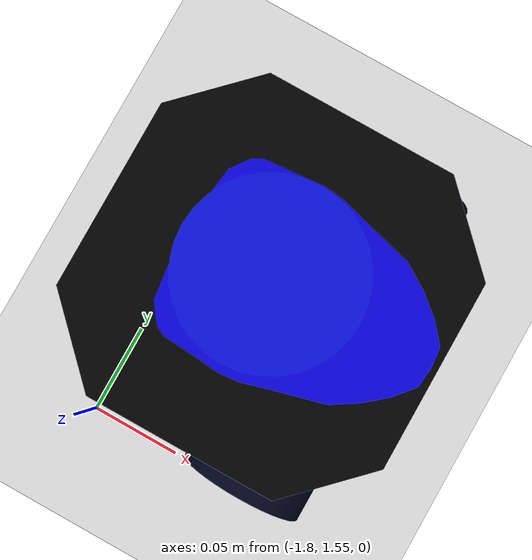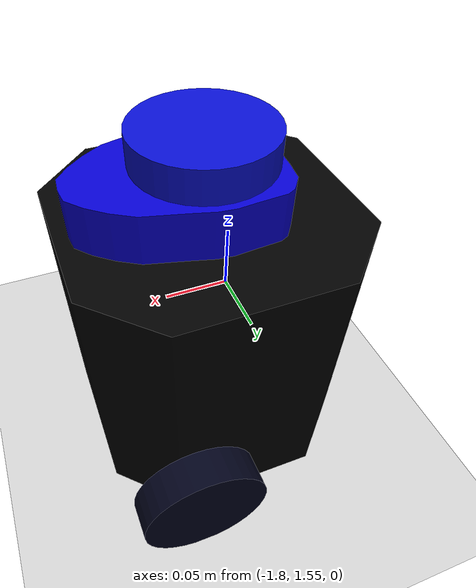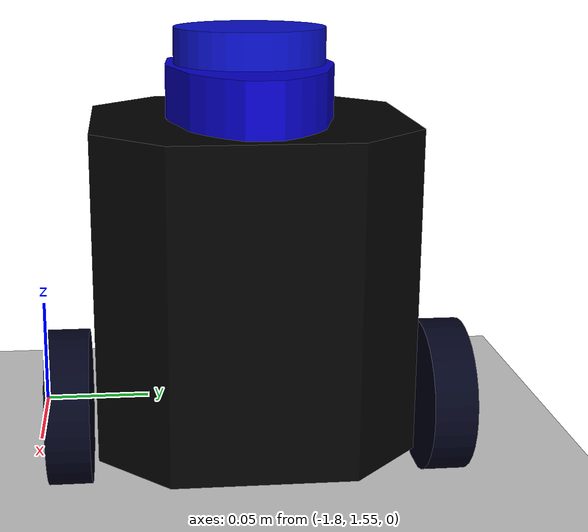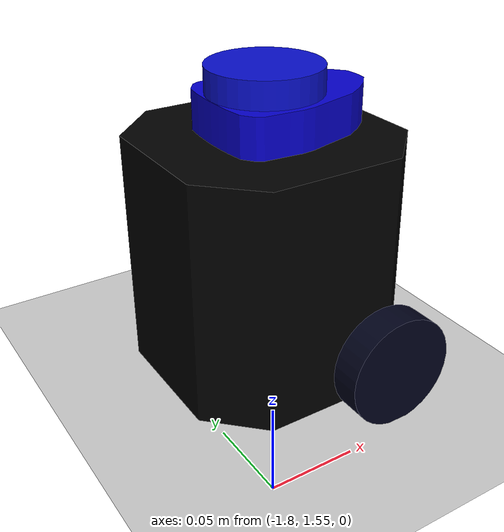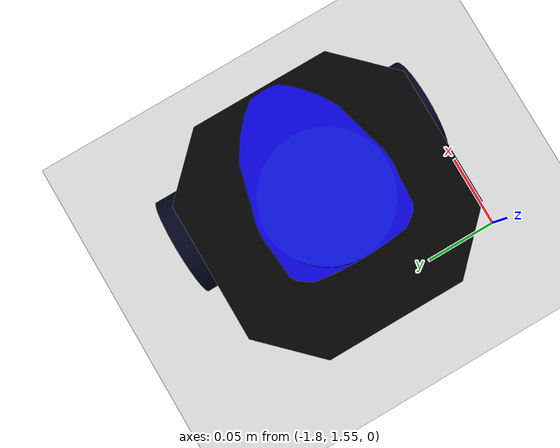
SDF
<sdf version="1.7">
 <world name="default">
  <model name="ground_plane">
   <static>1</static>
   <link name="link">
    <collision name="collision">
     <geometry><plane><normal>0 0 1</normal><size>100 100</size></plane></geometry>
     <surface><friction><ode><mu>100</mu><mu2>50</mu2></ode></friction></surface>
    </collision>
    <visual name="visual">
     <cast_shadows>0</cast_shadows>
     <geometry><plane><normal>0 0 1</normal><size>100 100</size></plane></geometry>
     <material>
      <script><uri>file://media/materials/scripts/gazebo.material</uri><name>Gazebo/Grey</name></script>
     </material>
    </visual>
   </link>
  </model>
  <model name="tb2">
   <pose>-1.71083 1.64596 0.00888 2e-05 0.001442 1.4e-05</pose>
   <link name="base_footprint">
    <inertial>
     <inertia><ixx>1</ixx><ixy>0</ixy><ixz>0</ixz><iyy>1</iyy><iyz>0</iyz><izz>1</izz></inertia>
     <mass>1</mass>
    </inertial>
   </link>
   <link name="base_link">
    <inertial>
     <pose>-0.032 0 0.07 0 -0 0</pose>
     <inertia>
      <ixx>0.723974</ixx>
      <ixy>4.6864e-10</ixy>
      <ixz>-1.09526e-08</ixz>
      <iyy>0.723974</iyy>
      <iyz>2.85826e-09</iyz>
      <izz>0.65305</izz>
     </inertia>
     <mass>0.825735</mass>
    </inertial>
    <collision name="base_collision">
     <pose>-0.032 0 0.07 0 -0 0</pose>
     <geometry><box><size>0.14 0.14 0.14</size></box></geometry>
    </collision>
    <visual name="base_visual">
     <pose>-0.032 0 0 0 -0 0</pose>
     <geometry>
      <mesh><uri>model://turtlebot3_burger/meshes/burger_base.dae</uri><scale>0.001 0.001 0.001</scale></mesh>
     </geometry>
    </visual>
   </link>
   <link name="imu_link">
    <sensor name="tb3_imu" type="imu">
     <always_on>1</always_on>
     <update_rate>30</update_rate>
     <imu>
      <angular_velocity>
       <x><noise type="gaussian"><mean>0</mean><stddev>0.0002</stddev></noise></x>
       <y><noise type="gaussian"><mean>0</mean><stddev>0.0002</stddev></noise></y>
       <z><noise type="gaussian"><mean>0</mean><stddev>0.0002</stddev></noise></z>
      </angular_velocity>
      <linear_acceleration>
       <x><noise type="gaussian"><mean>0</mean><stddev>0.017</stddev></noise></x>
       <y><noise type="gaussian"><mean>0</mean><stddev>0.017</stddev></noise></y>
       <z><noise type="gaussian"><mean>0</mean><stddev>0.017</stddev></noise></z>
      </linear_acceleration>
     </imu>
     <plugin name="turtlebot3_imu" filename="libgazebo_ros_imu_sensor.so">
      <ros><remapping>~/out:=imu</remapping><namespace>/tb2</namespace></ros>
     </plugin>
    </sensor>
    <inertial>
     <inertia><ixx>1</ixx><ixy>0</ixy><ixz>0</ixz><iyy>1</iyy><iyz>0</iyz><izz>1</izz></inertia>
     <mass>1</mass>
    </inertial>
   </link>
   <link name="base_scan">
    <inertial>
     <pose>-0.02 0 0.161 0 -0 0</pose>
     <inertia><ixx>0.001</ixx><ixy>0</ixy><ixz>0</ixz><iyy>0.001</iyy><iyz>0</iyz><izz>0.001</izz></inertia>
     <mass>0.114</mass>
    </inertial>
    <collision name="lidar_sensor_collision">
     <pose>-0.02 0 0.161 0 -0 0</pose>
     <geometry><cylinder><radius>0.0508</radius><length>0.055</length></cylinder></geometry>
    </collision>
    <visual name="lidar_sensor_visual">
     <pose>-0.032 0 0.171 0 -0 0</pose>
     <geometry>
      <mesh><uri>model://turtlebot3_burger/meshes/lds.dae</uri><scale>0.001 0.001 0.001</scale></mesh>
     </geometry>
    </visual>
    <sensor name="hls_lfcd_lds" type="ray">
     <always_on>1</always_on>
     <visualize>1</visualize>
     <pose>-0.032 0 0.171 0 -0 0</pose>
     <update_rate>5</update_rate>
     <ray>
      <scan>
       <horizontal>
        <samples>360</samples>
        <resolution>1</resolution>
        <min_angle>0</min_angle>
        <max_angle>6.28</max_angle>
       </horizontal>
       <vertical><samples>1</samples><min_angle>0</min_angle><max_angle>0</max_angle></vertical>
      </scan>
      <range><min>0.12</min><max>1</max><resolution>0.015</resolution></range>
      <noise><type>gaussian</type><mean>0</mean><stddev>0.01</stddev></noise>
     </ray>
     <plugin name="turtlebot3_laserscan" filename="libgazebo_ros_ray_sensor.so">
      <ros><remapping>~/out:=scan</remapping><visualize>1</visualize><namespace>/tb2</namespace></ros>
      <output_type>sensor_msgs/LaserScan</output_type>
      <frame_name>base_scan</frame_name>
     </plugin>
    </sensor>
   </link>
   <link name="wheel_left_link">
    <inertial>
     <pose>0 0.08 0.023 -1.57 0 0</pose>
     <inertia>
      <ixx>0.00181582</ixx>
      <ixy>-9.3392e-12</ixy>
      <ixz>1.04909e-11</ixz>
      <iyy>0.00329221</iyy>
      <iyz>5.75694e-11</iyz>
      <izz>0.00181582</izz>
     </inertia>
     <mass>0.0284989</mass>
    </inertial>
    <collision name="wheel_left_collision">
     <pose>0 0.08 0.023 -1.57 0 0</pose>
     <geometry><cylinder><radius>0.033</radius><length>0.018</length></cylinder></geometry>
     <surface>
      <friction>
       <ode><mu>100000</mu><mu2>100000</mu2><fdir1>0 0 0</fdir1><slip1>0</slip1><slip2>0</slip2></ode>
      </friction>
      <contact>
       <ode>
        <soft_cfm>0</soft_cfm>
        <soft_erp>0.2</soft_erp>
        <kp>100000</kp>
        <kd>1</kd>
        <max_vel>0.01</max_vel>
        <min_depth>0.001</min_depth>
       </ode>
      </contact>
     </surface>
    </collision>
    <visual name="wheel_left_visual">
     <pose>0 0.08 0.023 0 -0 0</pose>
     <geometry>
      <mesh><uri>model://turtlebot3_burger/meshes/tire.dae</uri><scale>0.001 0.001 0.001</scale></mesh>
     </geometry>
    </visual>
   </link>
   <link name="wheel_right_link">
    <inertial>
     <pose>0 -0.08 0.023 -1.57 0 0</pose>
     <inertia>
      <ixx>0.00181582</ixx>
      <ixy>-9.3392e-12</ixy>
      <ixz>1.04909e-11</ixz>
      <iyy>0.00329221</iyy>
      <iyz>5.75694e-11</iyz>
      <izz>0.00181582</izz>
     </inertia>
     <mass>0.0284989</mass>
    </inertial>
    <collision name="wheel_right_collision">
     <pose>0 -0.08 0.023 -1.57 0 0</pose>
     <geometry><cylinder><radius>0.033</radius><length>0.018</length></cylinder></geometry>
     <surface>
      <friction>
       <ode><mu>100000</mu><mu2>100000</mu2><fdir1>0 0 0</fdir1><slip1>0</slip1><slip2>0</slip2></ode>
      </friction>
      <contact>
       <ode>
        <soft_cfm>0</soft_cfm>
        <soft_erp>0.2</soft_erp>
        <kp>100000</kp>
        <kd>1</kd>
        <max_vel>0.01</max_vel>
        <min_depth>0.001</min_depth>
       </ode>
      </contact>
     </surface>
    </collision>
    <visual name="wheel_right_visual">
     <pose>0 -0.08 0.023 0 -0 0</pose>
     <geometry>
      <mesh><uri>model://turtlebot3_burger/meshes/tire.dae</uri><scale>0.001 0.001 0.001</scale></mesh>
     </geometry>
    </visual>
   </link>
   <link name="caster_back_link">
    <pose>-0.081 0 -0.004 -1.57 0 0</pose>
    <inertial>
     <mass>0.005</mass>
     <inertia><ixx>0.001</ixx><ixy>0</ixy><ixz>0</ixz><iyy>0.001</iyy><iyz>0</iyz><izz>0.001</izz></inertia>
    </inertial>
    <collision name="collision">
     <geometry><sphere><radius>0.005</radius></sphere></geometry>
     <surface>
      <contact>
       <ode>
        <soft_cfm>0</soft_cfm>
        <soft_erp>0.2</soft_erp>
        <kp>100000</kp>
        <kd>1</kd>
        <max_vel>0.01</max_vel>
        <min_depth>0.001</min_depth>
       </ode>
      </contact>
     </surface>
    </collision>
   </link>
   <joint name="base_joint" type="fixed">
    <parent>base_footprint</parent>
    <child>base_link</child>
    <pose>0 0 0.01 0 -0 0</pose>
   </joint>
   <joint name="wheel_left_joint" type="revolute">
    <parent>base_link</parent>
    <child>wheel_left_link</child>
    <pose>0 0.08 0.023 -1.57 0 0</pose>
    <axis>
     <xyz>0 0 1</xyz>
     <limit><lower>-1e+16</lower><upper>1e+16</upper></limit>
     <dynamics><spring_reference>0</spring_reference><spring_stiffness>0</spring_stiffness></dynamics>
    </axis>
   </joint>
   <joint name="wheel_right_joint" type="revolute">
    <parent>base_link</parent>
    <child>wheel_right_link</child>
    <pose>0 -0.08 0.023 -1.57 0 0</pose>
    <axis>
     <xyz>0 0 1</xyz>
     <limit><lower>-1e+16</lower><upper>1e+16</upper></limit>
     <dynamics><spring_reference>0</spring_reference><spring_stiffness>0</spring_stiffness></dynamics>
    </axis>
   </joint>
   <joint name="caster_back_joint" type="ball"><parent>base_link</parent><child>caster_back_link</child></joint>
   <joint name="imu_joint" type="fixed">
    <parent>base_link</parent>
    <child>imu_link</child>
    <pose>-0.032 0 0.068 0 -0 0</pose>
    <axis><xyz>0 0 1</xyz><limit><lower>-1e+16</lower><upper>1e+16</upper></limit></axis>
   </joint>
   <joint name="lidar_joint" type="fixed">
    <parent>base_link</parent>
    <child>base_scan</child>
    <pose>-0.032 0 0.171 0 -0 0</pose>
    <axis><xyz>0 0 1</xyz><limit><lower>-1e+16</lower><upper>1e+16</upper></limit></axis>
   </joint>
   <plugin name="turtlebot3_diff_drive" filename="libgazebo_ros_diff_drive.so">
    <ros><remapping>/tf:=tf</remapping><namespace>/tb2</namespace></ros>
    <update_rate>10</update_rate>
    <left_joint>wheel_left_joint</left_joint>
    <right_joint>wheel_right_joint</right_joint>
    <wheel_separation>0.160</wheel_separation>
    <wheel_diameter>0.066</wheel_diameter>
    <max_wheel_torque>20</max_wheel_torque>
    <max_wheel_acceleration>1.0</max_wheel_acceleration>
    <command_topic>cmd_vel</command_topic>
    <publish_odom>1</publish_odom>
    <publish_odom_tf>1</publish_odom_tf>
    <publish_wheel_tf>0</publish_wheel_tf>
    <odometry_topic>odom</odometry_topic>
    <odometry_frame>odom</odometry_frame>
    <robot_base_frame>base_footprint</robot_base_frame>
   </plugin>
   <plugin name="turtlebot3_joint_state" filename="libgazebo_ros_joint_state_publisher.so">
    <ros><remapping>~/out:=joint_states</remapping><namespace>/tb2</namespace></ros>
    <update_rate>30</update_rate>
    <joint_name>wheel_left_joint</joint_name>
    <joint_name>wheel_right_joint</joint_name>
   </plugin>
  </model>
 </world>
</sdf>
